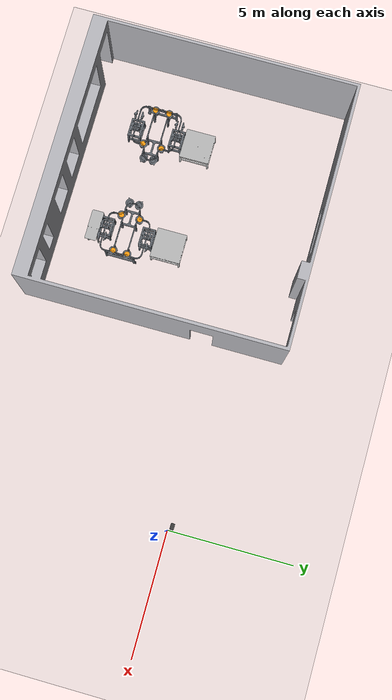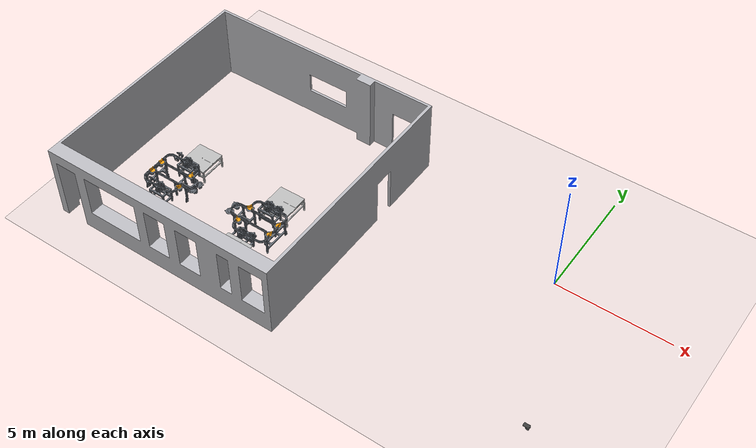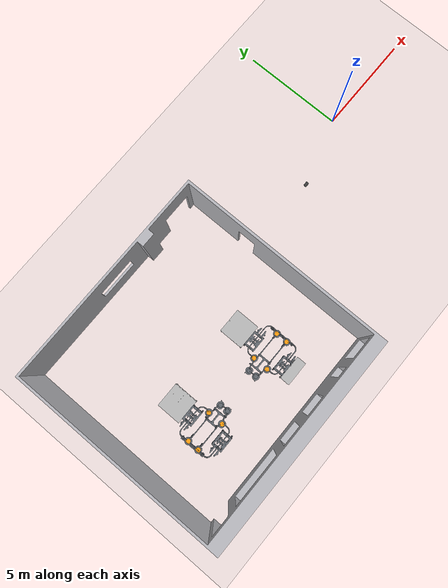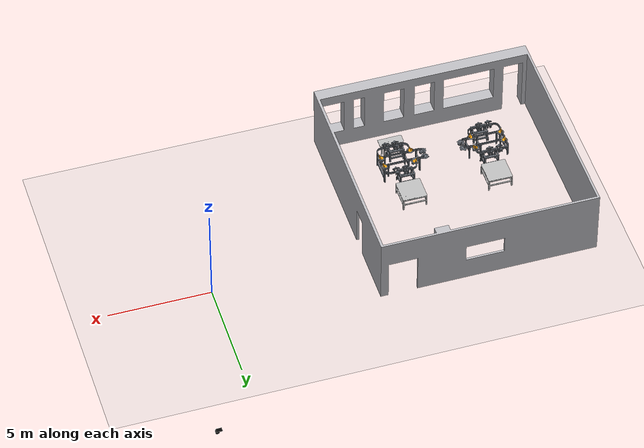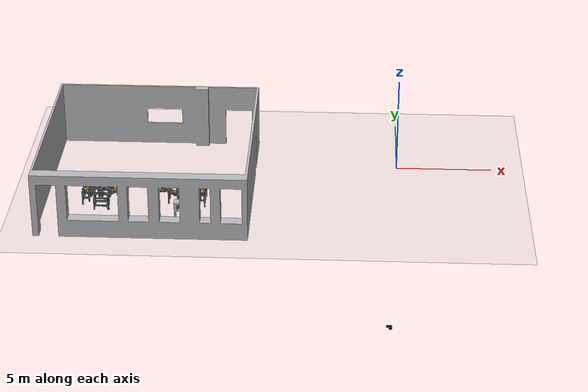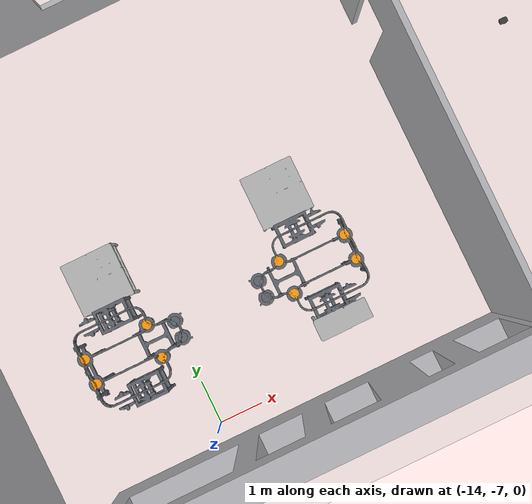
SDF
<sdf version="1.4">
 <world name="room_315_only">
  <physics name="5ms" type="ignored">
   <max_step_size>0.005</max_step_size>
   <real_time_factor>1.0</real_time_factor>
  </physics>
  <plugin filename="gz-sim-physics-system" name="gz::sim::systems::Physics"/>
  <plugin filename="gz-sim-user-commands-system" name="gz::sim::systems::UserCommands"/>
  <plugin filename="gz-sim-scene-broadcaster-system" name="gz::sim::systems::SceneBroadcaster"/>
  <plugin filename="gz-sim-sensors-system" name="gz::sim::systems::Sensors">
   <render_engine>ogre2</render_engine>
  </plugin>
  <plugin filename="gz-sim-imu-system" name="gz::sim::systems::Imu"/>
  <gravity>0.0 0.0 -9.8</gravity>
  <scene>
   <ambient>0.4 0.4 0.4 1</ambient>
   <background>0.7 0.7 0.7 1</background>
   <shadows>false</shadows>
   <grid>false</grid>
   <origin_visual>false</origin_visual>
  </scene>
  <include><uri>model://sun</uri></include>
  <include><uri>model://ground_plane</uri></include>
  <include><uri>model://room_315</uri><name>room_315_1</name><pose>0.0 0.0 0 0 0 -1.57</pose></include>
  <include>
   <uri>model://kuka_table</uri>
   <name>room315_kuka_table_1</name>
   <pose>-10.6096 -6.0 0.5 -1.57 0 1.57</pose>
  </include>
  <include>
   <uri>model://table_yaskawa</uri>
   <name>room315_yaskawa_table_1</name>
   <pose>-10.6436 -2.97 0.5 0 0 1.57</pose>
  </include>
  <include>
   <uri>model://table_yaskawa</uri>
   <name>room315_yaskawa_table_2</name>
   <pose>-14.9162 -2.97 0.5 0 0 1.57</pose>
  </include>
  <include>
   <uri>model://cell_static_gauche_final</uri>
   <name>cell_static_gauche_final_1</name>
   <pose>-9.65 -3.6 0.317 0 0 3.14</pose>
  </include>
  <include>
   <uri>model://cell_static_droit_final</uri>
   <name>room315_cell_static_droit_final_1</name>
   <pose>-15.9718 -5.8001 0.32 0.0 0.0 0.0</pose>
  </include>
  <include>
   <uri>model://cell_path_left</uri>
   <name>room315_cell_path_left_1</name>
   <pose>-11.865 -5.56 1.05 0 0 0</pose>
  </include>
  <include>
   <uri>model://cell_path_right</uri>
   <name>room315_cell_path_right_1</name>
   <pose>-13.705 -3.843 1.05 0 0 3.14</pose>
  </include>
  <include>
   <uri>model://room315_shuttle</uri>
   <name>room315_right_shuttle_1</name>
   <pose>0 0 -10 0 0 0</pose>
  </include>
  <include>
   <uri>model://room315_shuttle</uri>
   <name>room315_right_shuttle_2</name>
   <pose>0 0 -10 0 0 0</pose>
  </include>
  <include>
   <uri>model://room315_shuttle</uri>
   <name>room315_right_shuttle_3</name>
   <pose>0 0 -10 0 0 0</pose>
  </include>
  <include>
   <uri>model://room315_shuttle</uri>
   <name>room315_right_shuttle_4</name>
   <pose>0 0 -10 0 0 0</pose>
  </include>
  <include>
   <uri>model://room315_shuttle</uri>
   <name>room315_left_shuttle_1</name>
   <pose>0 0 -10 0 0 0</pose>
  </include>
  <include>
   <uri>model://rail_switch_3pos_droit_static_black</uri>
   <name>static_droit_switch_1</name>
   <pose>-13.770 -4.505 1.053 0 0 1.02</pose>
  </include>
  <include>
   <uri>model://rail_switch_3pos_droit_static_black</uri>
   <name>static_droit_switch_2</name>
   <pose>-13.775 -4.88 1.053 0 0 -0.02</pose>
  </include>
  <include>
   <uri>model://rail_switch_3pos_droit_static_black</uri>
   <name>static_gauche_switch_1</name>
   <pose>-11.848 -4.515 1.05 0 0 3.13319</pose>
  </include>
  <include>
   <uri>model://rail_switch_3pos_droit_static_black</uri>
   <name>static_gauche_switch_2</name>
   <pose>-11.849 -4.885 1.05 0 0 -2.13</pose>
  </include>
  <include>
   <uri>model://rail_switch_3pos_droit</uri>
   <name>A3_droit_switch</name>
   <pose>-15.802 -4.97 1.053 0 0 0.50666</pose>
  </include>
  <include>
   <uri>model://rail_switch_3pos_droit</uri>
   <name>A4_droit_switch</name>
   <pose>-14.34 -5.065 1.053 0 0 3.13</pose>
  </include>
  <include>
   <uri>model://rail_switch_3pos_droit</uri>
   <name>A1_droit_switch</name>
   <pose>-14.3368 -4.32 1.053 0 0 -2.1</pose>
  </include>
  <include>
   <uri>model://rail_switch_3pos_droit</uri>
   <name>A2_droit_switch</name>
   <pose>-15.802 -4.41 1.053 0 0 0.50666</pose>
  </include>
  <include>
   <uri>model://rail_switch_3pos_droit</uri>
   <name>A4_gauche_switch</name>
   <pose>-9.822 -4.982 1.05 0 0 -2.63653</pose>
  </include>
  <include>
   <uri>model://rail_switch_3pos_droit</uri>
   <name>A3_gauche_switch</name>
   <pose>-11.288 -5.071 1.05 0 0 1.04</pose>
  </include>
  <include>
   <uri>model://rail_switch_3pos_droit</uri>
   <name>A2_gauche_switch</name>
   <pose>-11.285 -4.329 1.05 0 0 -0.025</pose>
  </include>
  <include>
   <uri>model://rail_switch_3pos_droit</uri>
   <name>A1_gauche_switch</name>
   <pose>-9.822 -4.42 1.05 0 0 -2.63653</pose>
  </include>
 </world>
</sdf>

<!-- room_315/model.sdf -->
<sdf version="1.9">
  <model name="room_315">
    <static>true</static>
    <link name="room_315_link">
      <visual name="room_315_visual">
        <pose>0 0 0 0 0 0</pose>
        <geometry>
          <mesh>
            <uri>model://room_315/meshes/315_room.stl</uri>
          </mesh>
        </geometry>
        <material>
          <ambient>0.72 0.72 0.74 1.0</ambient>
          <diffuse>0.72 0.72 0.74 1.0</diffuse>
          <specular>0.08 0.08 0.08 1.0</specular>
          <emissive>0.0 0.0 0.0 0.0</emissive>
        </material>
      </visual>
      <collision name="room_315_collision">
        <pose>0 0 0 0 0 0</pose>
        <geometry>
          <mesh>
            <uri>model://room_315/meshes/315_room.stl</uri>
          </mesh>
        </geometry>
      </collision>
    </link>
  </model>
</sdf>

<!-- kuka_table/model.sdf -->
<sdf version="1.9">
  <model name="kuka_table">
    <static>true</static>
    <link name="kuka_table_link">
      <visual name="kuka_table_visual">
        <geometry>
          <mesh>
            <uri>model://kuka_table/meshes/kuka_table.stl</uri>
          </mesh>
        </geometry>
      </visual>
      <collision name="kuka_table_collision">
        <geometry>
          <mesh>
            <uri>model://kuka_table/meshes/kuka_table.stl</uri>
          </mesh>
        </geometry>
      </collision>
    </link>
  </model>
</sdf>

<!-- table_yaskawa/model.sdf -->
<sdf version="1.9">
  <model name="table_yaskawa">
    <static>true</static>
    <link name="table_yaskawa_link">
      <visual name="table_yaskawa_visual">
        <geometry>
          <mesh>
            <uri>model://table_yaskawa/meshes/table_yaskawa.stl</uri>
            <scale>0.001 0.001 0.001</scale>
          </mesh>
        </geometry>
      </visual>
      <collision name="table_yaskawa_collision">
        <geometry>
          <mesh>
            <uri>model://table_yaskawa/meshes/table_yaskawa.stl</uri>
            <scale>0.001 0.001 0.001</scale>
          </mesh>
        </geometry>
      </collision>
    </link>
  </model>
</sdf>

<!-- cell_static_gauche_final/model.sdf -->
<sdf version="1.9">
  <model name="cell_static_gauche_final">
    <static>true</static>
    <link name="cell_static_gauche_final_link">
      <visual name="cell_static_gauche_final_visual">
        <geometry>
          <mesh>
            <uri>model://cell_static_gauche_final/meshes/cell_static_gauche_final.STL</uri>
          </mesh>
        </geometry>
        <material>
          <ambient>0.38 0.40 0.43 1</ambient>
          <diffuse>0.38 0.40 0.43 1</diffuse>
          <specular>0.30 0.30 0.30 1</specular>
          <emissive>0 0 0 1</emissive>
        </material>
      </visual>
      <collision name="cell_static_gauche_final_collision">
        <geometry>
          <mesh>
            <uri>model://cell_static_gauche_final/meshes/cell_static_gauche_final.STL</uri>
          </mesh>
        </geometry>
      </collision>
    </link>
  </model>
</sdf>

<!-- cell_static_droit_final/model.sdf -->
<sdf version="1.9">
  <model name="cell_static_droit_final">
    <static>true</static>
    <link name="cell_static_droit_final_link">
      <visual name="cell_static_droit_final_visual">
        <geometry>
          <mesh>
            <uri>model://cell_static_droit_final/meshes/cell_static_droit_final.STL</uri>
          </mesh>
        </geometry>
        <material>
          <ambient>0.38 0.40 0.43 1</ambient>
          <diffuse>0.38 0.40 0.43 1</diffuse>
          <specular>0.30 0.30 0.30 1</specular>
          <emissive>0 0 0 1</emissive>
        </material>
      </visual>
      <collision name="cell_static_droit_final_collision">
        <geometry>
          <mesh>
            <uri>model://cell_static_droit_final/meshes/cell_static_droit_final.STL</uri>
          </mesh>
        </geometry>
      </collision>
    </link>
  </model>
</sdf>

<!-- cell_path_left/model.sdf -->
<sdf version="1.9">
  <model name="cell_path_left">
    <static>true</static>
    <link name="cell_path_left_link">
      <visual name="cell_path_left_visual">
        <geometry>
          <mesh>
            <uri>model://cell_path_left/meshes/CELL_PATH_LEFT.STL</uri>
          </mesh>
        </geometry>
        <material>
          <ambient>0.38 0.40 0.43 1</ambient>
          <diffuse>0.38 0.40 0.43 1</diffuse>
          <specular>0.30 0.30 0.30 1</specular>
          <emissive>0 0 0 1</emissive>
        </material>
      </visual>
      <collision name="cell_path_left_collision">
        <geometry>
          <mesh>
            <uri>model://cell_path_left/meshes/CELL_PATH_LEFT.STL</uri>
          </mesh>
        </geometry>
        <surface>
          <contact>
            <collide_bitmask>0x0001</collide_bitmask>
          </contact>
        </surface>
      </collision>
    </link>
  </model>
</sdf>

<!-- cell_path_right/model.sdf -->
<sdf version="1.9">
  <model name="cell_path_right">
    <static>true</static>
    <link name="cell_path_right_link">
      <visual name="cell_path_right_visual">
        <geometry>
          <mesh>
            <uri>model://cell_path_right/meshes/CELL_PATH_RIGHT.STL</uri>
          </mesh>
        </geometry>
        <material>
          <ambient>0.38 0.40 0.43 1</ambient>
          <diffuse>0.38 0.40 0.43 1</diffuse>
          <specular>0.30 0.30 0.30 1</specular>
          <emissive>0 0 0 1</emissive>
        </material>
      </visual>
      <collision name="cell_path_right_collision">
        <geometry>
          <mesh>
            <uri>model://cell_path_right/meshes/CELL_PATH_RIGHT.STL</uri>
          </mesh>
        </geometry>
        <surface>
          <friction>
            <ode>
              <mu>0.35</mu>
              <mu2>0.35</mu2>
            </ode>
            <bullet>
              <friction>0.35</friction>
              <friction2>0.35</friction2>
              <rolling_friction>0.01</rolling_friction>
            </bullet>
          </friction>
          <contact>
            <collide_bitmask>0x0001</collide_bitmask>
            <ode>
              <kp>2000000</kp>
              <kd>50</kd>
              <max_vel>0.1</max_vel>
              <min_depth>0.001</min_depth>
            </ode>
            <bullet>
              <kp>2000000</kp>
              <kd>50</kd>
            </bullet>
          </contact>
        </surface>
      </collision>
    </link>
  </model>
</sdf>

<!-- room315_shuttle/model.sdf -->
<sdf version="1.9">
  <model name="room315_shuttle">
    <static>false</static>
    <link name="room315_shuttle_link">
      <kinematic>true</kinematic>
      <gravity>false</gravity>
      <pose>0 0 0 0 0 0</pose>
      <inertial>
        <mass>0.1</mass>
        <inertia>
          <ixx>0.001</ixx>
          <ixy>0.0</ixy>
          <ixz>0.0</ixz>
          <iyy>0.001</iyy>
          <iyz>0.0</iyz>
          <izz>0.001</izz>
        </inertia>
      </inertial>
      <visual name="room315_shuttle_visual">
        <pose>-0.25 -0.100000024 -0.078499973 0 0 0</pose>
        <geometry>
          <mesh>
            <uri>model://room315_shuttle/meshes/shuttle.STL</uri>
          </mesh>
        </geometry>
        <material>
          <ambient>0.01 0.01 0.01 1</ambient>
          <diffuse>0.01 0.01 0.01 1</diffuse>
          <specular>0.20 0.20 0.20 1</specular>
          <emissive>0 0 0 1</emissive>
        </material>
      </visual>
      <collision name="room315_shuttle_robot_collision">
        <pose>-0.078417048 0 0 0 0 0</pose>
        <geometry>
          <box>
            <size>0.36 0.22 0.17</size>
          </box>
        </geometry>
        <surface>
          <contact>
            <!-- Visual/kinematic shuttle: ROS-side collision avoidance handles spacing. -->
            <collide_bitmask>0x0000</collide_bitmask>
          </contact>
        </surface>
      </collision>
    </link>
    <plugin
        filename="gz-sim-pose-publisher-system"
        name="gz::sim::systems::PosePublisher">
      <publish_model_pose>true</publish_model_pose>
      <publish_link_pose>true</publish_link_pose>
      <publish_collision_pose>false</publish_collision_pose>
      <publish_visual_pose>false</publish_visual_pose>
      <publish_nested_model_pose>false</publish_nested_model_pose>
      <update_frequency>30</update_frequency>
    </plugin>
  </model>
</sdf>

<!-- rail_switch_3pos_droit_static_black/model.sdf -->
<sdf version="1.9">
  <model name="rail_switch_3pos_droit_static_black">
    <static>true</static>
    <link name="blade_link">
      <visual name="blade_visual">
        <geometry>
          <mesh>
            <uri>model://rail_switch_3pos_droit/meshes/aiguillage3.stl</uri>
            <scale>39.37 39.37 39.37</scale>
          </mesh>
        </geometry>
        <material>
          <ambient>0.38 0.40 0.43 1</ambient>
          <diffuse>0.38 0.40 0.43 1</diffuse>
          <specular>0.30 0.30 0.30 1</specular>
          <emissive>0 0 0 1</emissive>
        </material>
      </visual>
      <collision name="blade_collision">
        <geometry>
          <mesh>
            <uri>model://rail_switch_3pos_droit/meshes/aiguillage3.stl</uri>
            <scale>39.37 39.37 39.37</scale>
          </mesh>
        </geometry>
        <surface>
          <friction>
            <ode>
              <mu>0.35</mu>
              <mu2>0.35</mu2>
            </ode>
            <bullet>
              <friction>0.35</friction>
              <friction2>0.35</friction2>
              <rolling_friction>0.005</rolling_friction>
            </bullet>
          </friction>
          <contact>
            <collide_bitmask>0x0001</collide_bitmask>
            <ode>
              <kp>2000000</kp>
              <kd>50</kd>
              <max_vel>0.1</max_vel>
              <min_depth>0.001</min_depth>
            </ode>
            <bullet>
              <kp>2000000</kp>
              <kd>50</kd>
            </bullet>
          </contact>
        </surface>
      </collision>
    </link>
  </model>
</sdf>

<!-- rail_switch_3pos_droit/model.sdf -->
<sdf version="1.9">
  <model name="rail_switch_3pos_droit">
    <static>true</static>
    <link name="blade_link">
      <kinematic>true</kinematic>
      <gravity>false</gravity>
      <inertial>
        <mass>0.1</mass>
        <inertia>
          <ixx>0.001</ixx>
          <ixy>0.0</ixy>
          <ixz>0.0</ixz>
          <iyy>0.001</iyy>
          <iyz>0.0</iyz>
          <izz>0.001</izz>
        </inertia>
      </inertial>

      <visual name="blade_visual">
        <geometry>
          <mesh>
            <uri>model://rail_switch_3pos_droit/meshes/aiguillage3.stl</uri>
            <scale>39.37 39.37 39.37</scale>
          </mesh>
        </geometry>
        <material>
          <ambient>1.0 0.62 0.05 1</ambient>
          <diffuse>1.0 0.62 0.05 1</diffuse>
          <specular>0.25 0.12 0.02 1</specular>
          <emissive>0.04 0.02 0.0 1</emissive>
        </material>
      </visual>
      <collision name="blade_collision">
        <geometry>
          <mesh>
            <uri>model://rail_switch_3pos_droit/meshes/aiguillage3.stl</uri>
            <scale>39.37 39.37 39.37</scale>
          </mesh>
        </geometry>
        <surface>
          <friction>
            <ode>
              <mu>0.35</mu>
              <mu2>0.35</mu2>
            </ode>
            <bullet>
              <friction>0.35</friction>
              <friction2>0.35</friction2>
              <rolling_friction>0.005</rolling_friction>
            </bullet>
          </friction>
          <contact>
            <collide_bitmask>0x0001</collide_bitmask>
            <ode>
              <kp>2000000</kp>
              <kd>50</kd>
              <max_vel>0.1</max_vel>
              <min_depth>0.001</min_depth>
            </ode>
            <bullet>
              <kp>2000000</kp>
              <kd>50</kd>
            </bullet>
          </contact>
        </surface>
      </collision>
    </link>
  </model>
</sdf>
